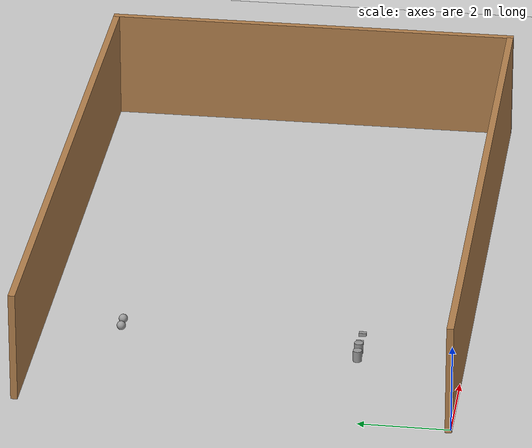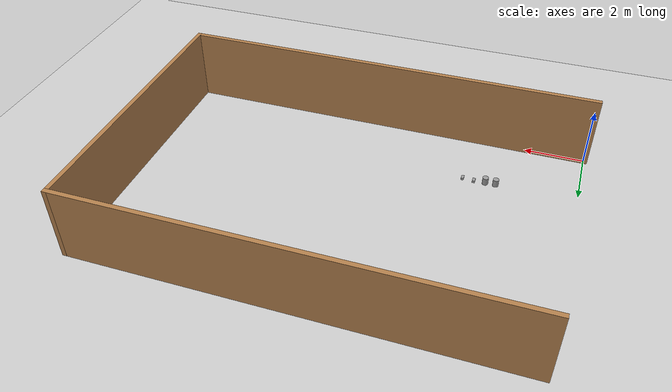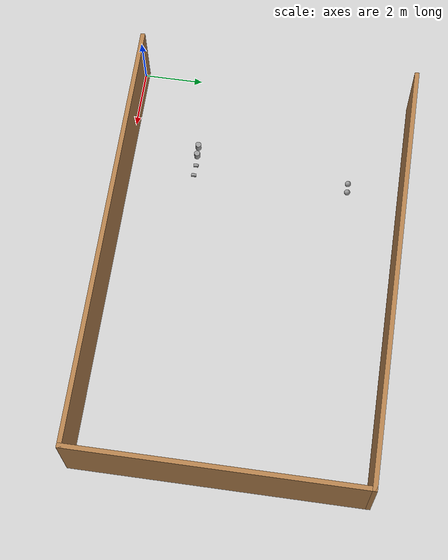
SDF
<sdf version="1.7">
 <world name="default">
  <light name="sun" type="directional">
   <pose>0 0 10 0 -0 0</pose>
   <diffuse>0.8 0.8 0.8 1</diffuse>
   <specular>0.2 0.2 0.2 1</specular>
   <attenuation>
    <range>1000</range>
    <constant>0.9</constant>
    <linear>0.01</linear>
    <quadratic>0.001</quadratic>
   </attenuation>
   <direction>-0.5 0.1 -0.9</direction>
   <spot><inner_angle>0</inner_angle><outer_angle>0</outer_angle><falloff>0</falloff></spot>
  </light>
  <model name="ground_plane">
   <static>1</static>
   <link name="link">
    <collision name="collision">
     <geometry><plane><normal>0 0 1</normal><size>100 100</size></plane></geometry>
     <surface>
      <contact><collide_bitmask>65535</collide_bitmask></contact>
      <friction><ode><mu>100</mu><mu2>50</mu2></ode></friction>
     </surface>
    </collision>
    <visual name="visual">
     <cast_shadows>0</cast_shadows>
     <geometry><plane><normal>0 0 1</normal><size>100 100</size></plane></geometry>
     <material>
      <script><uri>file://media/materials/scripts/gazebo.material</uri><name>Gazebo/Grey</name></script>
     </material>
    </visual>
   </link>
  </model>
  <gravity>0 0 -9.8</gravity>
  <magnetic_field>6e-06 2.3e-05 -4.2e-05</magnetic_field>
  <atmosphere type="adiabatic"/>
  <physics type="ode">
   <max_step_size>0.001</max_step_size>
   <real_time_factor>1</real_time_factor>
   <real_time_update_rate>1000</real_time_update_rate>
  </physics>
  <scene><ambient>0.4 0.4 0.4 1</ambient><background>0.7 0.7 0.7 1</background><shadows>1</shadows></scene>
  <audio><device>default</device></audio>
  <spherical_coordinates>
   <surface_model>EARTH_WGS84</surface_model>
   <latitude_deg>0</latitude_deg>
   <longitude_deg>0</longitude_deg>
   <elevation>0</elevation>
   <heading_deg>0</heading_deg>
  </spherical_coordinates>
  <model name="makeathonworld">
   <pose>7.12101 4.65278 0 0 -0 0</pose>
   <link name="Wall_3">
    <collision name="Wall_3_Collision">
     <geometry><box><size>14.5 0.15 2.5</size></box></geometry>
     <pose>0 0 1.25 0 -0 0</pose>
    </collision>
    <visual name="Wall_3_Visual">
     <pose>0 0 1.25 0 -0 0</pose>
     <geometry><box><size>14.5 0.15 2.5</size></box></geometry>
     <material>
      <script><uri>file://media/materials/scripts/gazebo.material</uri><name>Gazebo/Wood</name></script>
      <ambient>0.435294 0.796078 0.67451 1</ambient>
     </material>
     <meta><layer>0</layer></meta>
    </visual>
    <pose>-0 -4.60503 0 0 -0 0</pose>
   </link>
   <link name="Wall_4">
    <collision name="Wall_4_Collision">
     <geometry><box><size>9.5 0.15 2.5</size></box></geometry>
     <pose>0 0 1.25 0 -0 0</pose>
    </collision>
    <visual name="Wall_4_Visual">
     <pose>0 0 1.25 0 -0 0</pose>
     <geometry><box><size>9.5 0.15 2.5</size></box></geometry>
     <material>
      <script><uri>file://media/materials/scripts/gazebo.material</uri><name>Gazebo/Wood</name></script>
      <ambient>0.435294 0.796078 0.67451 1</ambient>
     </material>
     <meta><layer>0</layer></meta>
    </visual>
    <pose>7.175 0.069967 0 0 -0 1.5708</pose>
   </link>
   <link name="Wall_5">
    <collision name="Wall_5_Collision">
     <geometry><box><size>14.25 0.15 2.5</size></box></geometry>
     <pose>0 0 1.25 0 -0 0</pose>
    </collision>
    <visual name="Wall_5_Visual">
     <pose>0 0 1.25 0 -0 0</pose>
     <geometry><box><size>14.25 0.15 2.5</size></box></geometry>
     <material>
      <script><uri>file://media/materials/scripts/gazebo.material</uri><name>Gazebo/Wood</name></script>
      <ambient>0.435294 0.796078 0.67451 1</ambient>
     </material>
     <meta><layer>0</layer></meta>
    </visual>
    <pose>0.125 4.74497 0 0 -0 3.14159</pose>
   </link>
   <static>1</static>
  </model>
  <model name="makeathonmodel">
   <link name="link_2">
    <inertial>
     <mass>0.00794871</mass>
     <inertia>
      <ixx>3.16614e-05</ixx>
      <ixy>0</ixy>
      <ixz>0</ixz>
      <iyy>3.16614e-05</iyy>
      <iyz>0</iyz>
      <izz>3.16614e-05</izz>
     </inertia>
    </inertial>
    <pose>0.070804 3.51895 0.006924 0 -0 0</pose>
    <visual name="visual">
     <geometry><sphere><radius>0.0997899</radius></sphere></geometry>
     <material>
      <lighting>1</lighting>
      <script><uri>file://media/materials/scripts/gazebo.material</uri><name>Gazebo/Grey</name></script>
      <shader type="pixel"/>
     </material>
    </visual>
    <collision name="collision">
     <geometry><sphere><radius>0.09979</radius></sphere></geometry>
     <surface>
      <friction>
       <ode><mu>1</mu><mu2>1</mu2><fdir1>0 0 0</fdir1><slip1>0</slip1><slip2>0</slip2></ode>
       <torsional>
        <coefficient>1</coefficient>
        <patch_radius>0</patch_radius>
        <surface_radius>0</surface_radius>
        <use_patch_radius>1</use_patch_radius>
        <ode><slip>0</slip></ode>
       </torsional>
      </friction>
      <bounce><restitution_coefficient>0</restitution_coefficient><threshold>1e+06</threshold></bounce>
      <contact>
       <collide_without_contact>0</collide_without_contact>
       <collide_without_contact_bitmask>1</collide_without_contact_bitmask>
       <collide_bitmask>1</collide_bitmask>
       <ode>
        <soft_cfm>0</soft_cfm>
        <soft_erp>0.2</soft_erp>
        <kp>1e+13</kp>
        <kd>1</kd>
        <max_vel>0.01</max_vel>
        <min_depth>0</min_depth>
       </ode>
       <bullet>
        <split_impulse>1</split_impulse>
        <split_impulse_penetration_threshold>-0.01</split_impulse_penetration_threshold>
        <soft_cfm>0</soft_cfm>
        <soft_erp>0.2</soft_erp>
        <kp>1e+13</kp>
        <kd>1</kd>
       </bullet>
      </contact>
     </surface>
    </collision>
   </link>
   <link name="link_2_clone">
    <inertial>
     <mass>0.00794871</mass>
     <inertia>
      <ixx>3.16614e-05</ixx>
      <ixy>0</ixy>
      <ixz>0</ixz>
      <iyy>3.16614e-05</iyy>
      <iyz>0</iyz>
      <izz>3.16614e-05</izz>
     </inertia>
    </inertial>
    <pose>0.391955 3.52515 0.006924 0 -0 0</pose>
    <visual name="visual">
     <geometry><sphere><radius>0.0997899</radius></sphere></geometry>
     <material>
      <lighting>1</lighting>
      <script><uri>file://media/materials/scripts/gazebo.material</uri><name>Gazebo/Grey</name></script>
      <shader type="pixel"/>
     </material>
    </visual>
    <collision name="collision">
     <geometry><sphere><radius>0.09979</radius></sphere></geometry>
     <surface>
      <friction>
       <ode><mu>1</mu><mu2>1</mu2><fdir1>0 0 0</fdir1><slip1>0</slip1><slip2>0</slip2></ode>
       <torsional>
        <coefficient>1</coefficient>
        <patch_radius>0</patch_radius>
        <surface_radius>0</surface_radius>
        <use_patch_radius>1</use_patch_radius>
        <ode><slip>0</slip></ode>
       </torsional>
      </friction>
      <bounce><restitution_coefficient>0</restitution_coefficient><threshold>1e+06</threshold></bounce>
      <contact>
       <collide_without_contact>0</collide_without_contact>
       <collide_without_contact_bitmask>1</collide_without_contact_bitmask>
       <collide_bitmask>1</collide_bitmask>
       <ode>
        <soft_cfm>0</soft_cfm>
        <soft_erp>0.2</soft_erp>
        <kp>1e+13</kp>
        <kd>1</kd>
        <max_vel>0.01</max_vel>
        <min_depth>0</min_depth>
       </ode>
       <bullet>
        <split_impulse>1</split_impulse>
        <split_impulse_penetration_threshold>-0.01</split_impulse_penetration_threshold>
        <soft_cfm>0</soft_cfm>
        <soft_erp>0.2</soft_erp>
        <kp>1e+13</kp>
        <kd>1</kd>
       </bullet>
      </contact>
     </surface>
    </collision>
   </link>
   <link name="link_3">
    <inertial>
     <mass>0.0098839</mass>
     <inertia>
      <ixx>7.713e-05</ixx>
      <ixy>0</ixy>
      <ixz>0</ixz>
      <iyy>7.713e-05</iyy>
      <iyz>0</iyz>
      <izz>4.804e-05</izz>
     </inertia>
    </inertial>
    <pose>-0.653482 -1.77191 0.032401 0 -0 0</pose>
    <visual name="visual">
     <geometry><cylinder><radius>0.0985962</radius><length>0.25393</length></cylinder></geometry>
     <material>
      <lighting>1</lighting>
      <script><uri>file://media/materials/scripts/gazebo.material</uri><name>Gazebo/Grey</name></script>
      <shader type="pixel"><normal_map>__default__</normal_map></shader>
      <ambient>0.3 0.3 0.3 1</ambient>
      <diffuse>0.7 0.7 0.7 1</diffuse>
      <specular>0.01 0.01 0.01 1</specular>
      <emissive>0 0 0 1</emissive>
     </material>
    </visual>
    <visual name="ModelPreview_0::link_3::visual_1">
     <geometry><cylinder><radius>0.0985962</radius><length>0.25393</length></cylinder></geometry>
     <material>
      <lighting>1</lighting>
      <script><uri>file://media/materials/scripts/gazebo.material</uri><name>Gazebo/Grey</name></script>
      <shader type="pixel"><normal_map>__default__</normal_map></shader>
      <ambient>0.3 0.3 0.3 1</ambient>
      <diffuse>0.7 0.7 0.7 1</diffuse>
      <specular>0.01 0.01 0.01 1</specular>
      <emissive>0 0 0 1</emissive>
     </material>
    </visual>
    <visual name="ModelPreview_0::link_3::visual_2">
     <geometry><cylinder><radius>0.0985962</radius><length>0.25393</length></cylinder></geometry>
     <material>
      <lighting>1</lighting>
      <script><uri>file://media/materials/scripts/gazebo.material</uri><name>Gazebo/Grey</name></script>
      <shader type="pixel"><normal_map>__default__</normal_map></shader>
      <ambient>0.3 0.3 0.3 1</ambient>
      <diffuse>0.7 0.7 0.7 1</diffuse>
      <specular>0.01 0.01 0.01 1</specular>
      <emissive>0 0 0 1</emissive>
     </material>
    </visual>
    <visual name="ModelPreview_0::link_3::visual_3">
     <geometry><cylinder><radius>0.0985962</radius><length>0.25393</length></cylinder></geometry>
     <material>
      <lighting>1</lighting>
      <script><uri>file://media/materials/scripts/gazebo.material</uri><name>Gazebo/Grey</name></script>
      <shader type="pixel"><normal_map>__default__</normal_map></shader>
      <ambient>0.3 0.3 0.3 1</ambient>
      <diffuse>0.7 0.7 0.7 1</diffuse>
      <specular>0.01 0.01 0.01 1</specular>
      <emissive>0 0 0 1</emissive>
     </material>
    </visual>
    <visual name="ModelPreview_0::link_3::visual_4">
     <geometry><cylinder><radius>0.0985962</radius><length>0.25393</length></cylinder></geometry>
     <material>
      <lighting>1</lighting>
      <script><uri>file://media/materials/scripts/gazebo.material</uri><name>Gazebo/Grey</name></script>
      <shader type="pixel"><normal_map>__default__</normal_map></shader>
      <ambient>0.3 0.3 0.3 1</ambient>
      <diffuse>0.7 0.7 0.7 1</diffuse>
      <specular>0.01 0.01 0.01 1</specular>
      <emissive>0 0 0 1</emissive>
     </material>
    </visual>
    <collision name="collision">
     <geometry><cylinder><radius>0.098596</radius><length>0.25393</length></cylinder></geometry>
     <surface>
      <friction>
       <ode><mu>1</mu><mu2>1</mu2><fdir1>0 0 0</fdir1><slip1>0</slip1><slip2>0</slip2></ode>
       <torsional>
        <coefficient>1</coefficient>
        <patch_radius>0</patch_radius>
        <surface_radius>0</surface_radius>
        <use_patch_radius>1</use_patch_radius>
        <ode><slip>0</slip></ode>
       </torsional>
      </friction>
      <bounce><restitution_coefficient>0</restitution_coefficient><threshold>1e+06</threshold></bounce>
      <contact>
       <collide_without_contact>0</collide_without_contact>
       <collide_without_contact_bitmask>1</collide_without_contact_bitmask>
       <collide_bitmask>1</collide_bitmask>
       <ode>
        <soft_cfm>0</soft_cfm>
        <soft_erp>0.2</soft_erp>
        <kp>1e+13</kp>
        <kd>1</kd>
        <max_vel>0.01</max_vel>
        <min_depth>0</min_depth>
       </ode>
       <bullet>
        <split_impulse>1</split_impulse>
        <split_impulse_penetration_threshold>-0.01</split_impulse_penetration_threshold>
        <soft_cfm>0</soft_cfm>
        <soft_erp>0.2</soft_erp>
        <kp>1e+13</kp>
        <kd>1</kd>
       </bullet>
      </contact>
     </surface>
    </collision>
   </link>
   <link name="link_3_clone">
    <inertial>
     <mass>0.0098839</mass>
     <inertia>
      <ixx>7.713e-05</ixx>
      <ixy>0</ixy>
      <ixz>0</ixz>
      <iyy>7.713e-05</iyy>
      <iyz>0</iyz>
      <izz>4.804e-05</izz>
     </inertia>
    </inertial>
    <pose>-0.313362 -1.76216 0.032401 0 -0 0</pose>
    <visual name="visual">
     <geometry><cylinder><radius>0.0985962</radius><length>0.25393</length></cylinder></geometry>
     <material>
      <lighting>1</lighting>
      <script><uri>file://media/materials/scripts/gazebo.material</uri><name>Gazebo/Grey</name></script>
      <shader type="pixel"><normal_map>__default__</normal_map></shader>
      <ambient>0.3 0.3 0.3 1</ambient>
      <diffuse>0.7 0.7 0.7 1</diffuse>
      <specular>0.01 0.01 0.01 1</specular>
      <emissive>0 0 0 1</emissive>
     </material>
    </visual>
    <visual name="ModelPreview_0::link_3_clone::visual_1">
     <geometry><cylinder><radius>0.0985962</radius><length>0.25393</length></cylinder></geometry>
     <material>
      <lighting>1</lighting>
      <script><uri>file://media/materials/scripts/gazebo.material</uri><name>Gazebo/Grey</name></script>
      <shader type="pixel"><normal_map>__default__</normal_map></shader>
      <ambient>0.3 0.3 0.3 1</ambient>
      <diffuse>0.7 0.7 0.7 1</diffuse>
      <specular>0.01 0.01 0.01 1</specular>
      <emissive>0 0 0 1</emissive>
     </material>
    </visual>
    <visual name="ModelPreview_0::link_3_clone::visual_2">
     <geometry><cylinder><radius>0.0985962</radius><length>0.25393</length></cylinder></geometry>
     <material>
      <lighting>1</lighting>
      <script><uri>file://media/materials/scripts/gazebo.material</uri><name>Gazebo/Grey</name></script>
      <shader type="pixel"><normal_map>__default__</normal_map></shader>
      <ambient>0.3 0.3 0.3 1</ambient>
      <diffuse>0.7 0.7 0.7 1</diffuse>
      <specular>0.01 0.01 0.01 1</specular>
      <emissive>0 0 0 1</emissive>
     </material>
    </visual>
    <visual name="ModelPreview_0::link_3_clone::visual_3">
     <geometry><cylinder><radius>0.0985962</radius><length>0.25393</length></cylinder></geometry>
     <material>
      <lighting>1</lighting>
      <script><uri>file://media/materials/scripts/gazebo.material</uri><name>Gazebo/Grey</name></script>
      <shader type="pixel"><normal_map>__default__</normal_map></shader>
      <ambient>0.3 0.3 0.3 1</ambient>
      <diffuse>0.7 0.7 0.7 1</diffuse>
      <specular>0.01 0.01 0.01 1</specular>
      <emissive>0 0 0 1</emissive>
     </material>
    </visual>
    <visual name="ModelPreview_0::link_3_clone::visual_4">
     <geometry><cylinder><radius>0.0985962</radius><length>0.25393</length></cylinder></geometry>
     <material>
      <lighting>1</lighting>
      <script><uri>file://media/materials/scripts/gazebo.material</uri><name>Gazebo/Grey</name></script>
      <shader type="pixel"><normal_map>__default__</normal_map></shader>
     </material>
    </visual>
    <collision name="collision">
     <geometry><cylinder><radius>0.098596</radius><length>0.25393</length></cylinder></geometry>
     <surface>
      <friction>
       <ode><mu>1</mu><mu2>1</mu2><fdir1>0 0 0</fdir1><slip1>0</slip1><slip2>0</slip2></ode>
       <torsional>
        <coefficient>1</coefficient>
        <patch_radius>0</patch_radius>
        <surface_radius>0</surface_radius>
        <use_patch_radius>1</use_patch_radius>
        <ode><slip>0</slip></ode>
       </torsional>
      </friction>
      <bounce><restitution_coefficient>0</restitution_coefficient><threshold>1e+06</threshold></bounce>
      <contact>
       <collide_without_contact>0</collide_without_contact>
       <collide_without_contact_bitmask>1</collide_without_contact_bitmask>
       <collide_bitmask>1</collide_bitmask>
       <ode>
        <soft_cfm>0</soft_cfm>
        <soft_erp>0.2</soft_erp>
        <kp>1e+13</kp>
        <kd>1</kd>
        <max_vel>0.01</max_vel>
        <min_depth>0</min_depth>
       </ode>
       <bullet>
        <split_impulse>1</split_impulse>
        <split_impulse_penetration_threshold>-0.01</split_impulse_penetration_threshold>
        <soft_cfm>0</soft_cfm>
        <soft_erp>0.2</soft_erp>
        <kp>1e+13</kp>
        <kd>1</kd>
       </bullet>
      </contact>
     </surface>
    </collision>
   </link>
   <link name="link_4">
    <inertial>
     <mass>0.00121889</mass>
     <inertia>
      <ixx>3.35e-06</ixx>
      <ixy>0</ixy>
      <ixz>0</ixz>
      <iyy>1.53e-06</iyy>
      <iyz>0</iyz>
      <izz>3.56e-06</izz>
     </inertia>
    </inertial>
    <pose>0.061629 -1.74459 -0.042075 0 -0 0</pose>
    <visual name="visual">
     <geometry><box><size>0.092412 0.162677 0.080938</size></box></geometry>
     <material>
      <lighting>1</lighting>
      <script><uri>file://media/materials/scripts/gazebo.material</uri><name>Gazebo/Grey</name></script>
      <shader type="pixel"><normal_map>__default__</normal_map></shader>
     </material>
    </visual>
    <visual name="ModelPreview_0::link_4::visual_1">
     <geometry><box><size>0.092412 0.162677 0.080938</size></box></geometry>
     <material>
      <lighting>1</lighting>
      <script><uri>file://media/materials/scripts/gazebo.material</uri><name>Gazebo/Grey</name></script>
      <shader type="pixel"><normal_map>__default__</normal_map></shader>
     </material>
    </visual>
    <visual name="ModelPreview_0::link_4::visual_2">
     <geometry><box><size>0.092412 0.162677 0.080938</size></box></geometry>
     <material>
      <lighting>1</lighting>
      <script><uri>file://media/materials/scripts/gazebo.material</uri><name>Gazebo/Grey</name></script>
      <shader type="pixel"><normal_map>__default__</normal_map></shader>
     </material>
    </visual>
    <visual name="ModelPreview_0::link_4::visual_3">
     <geometry><box><size>0.092412 0.162677 0.080938</size></box></geometry>
     <material>
      <lighting>1</lighting>
      <script><uri>file://media/materials/scripts/gazebo.material</uri><name>Gazebo/Grey</name></script>
      <shader type="pixel"><normal_map>__default__</normal_map></shader>
     </material>
    </visual>
    <visual name="ModelPreview_0::link_4::visual_4">
     <geometry><box><size>0.092412 0.162677 0.080938</size></box></geometry>
     <material>
      <lighting>1</lighting>
      <script><uri>file://media/materials/scripts/gazebo.material</uri><name>Gazebo/Grey</name></script>
      <shader type="pixel"><normal_map>__default__</normal_map></shader>
     </material>
    </visual>
    <visual name="ModelPreview_0::link_4::visual_5">
     <geometry><box><size>0.092412 0.162677 0.080938</size></box></geometry>
     <material>
      <lighting>1</lighting>
      <script><uri>file://media/materials/scripts/gazebo.material</uri><name>Gazebo/Grey</name></script>
      <shader type="pixel"><normal_map>__default__</normal_map></shader>
     </material>
    </visual>
    <visual name="ModelPreview_0::link_4::visual_6">
     <geometry><box><size>0.092412 0.162677 0.080938</size></box></geometry>
     <material>
      <lighting>1</lighting>
      <script><uri>file://media/materials/scripts/gazebo.material</uri><name>Gazebo/Grey</name></script>
      <shader type="pixel"><normal_map>__default__</normal_map></shader>
     </material>
    </visual>
    <collision name="collision">
     <geometry><box><size>0.092412 0.162677 0.080938</size></box></geometry>
     <surface>
      <friction>
       <ode><mu>1</mu><mu2>1</mu2><fdir1>0 0 0</fdir1><slip1>0</slip1><slip2>0</slip2></ode>
       <torsional>
        <coefficient>1</coefficient>
        <patch_radius>0</patch_radius>
        <surface_radius>0</surface_radius>
        <use_patch_radius>1</use_patch_radius>
        <ode><slip>0</slip></ode>
       </torsional>
      </friction>
      <bounce><restitution_coefficient>0</restitution_coefficient><threshold>1e+06</threshold></bounce>
      <contact>
       <collide_without_contact>0</collide_without_contact>
       <collide_without_contact_bitmask>1</collide_without_contact_bitmask>
       <collide_bitmask>1</collide_bitmask>
       <ode>
        <soft_cfm>0</soft_cfm>
        <soft_erp>0.2</soft_erp>
        <kp>1e+13</kp>
        <kd>1</kd>
        <max_vel>0.01</max_vel>
        <min_depth>0</min_depth>
       </ode>
       <bullet>
        <split_impulse>1</split_impulse>
        <split_impulse_penetration_threshold>-0.01</split_impulse_penetration_threshold>
        <soft_cfm>0</soft_cfm>
        <soft_erp>0.2</soft_erp>
        <kp>1e+13</kp>
        <kd>1</kd>
       </bullet>
      </contact>
     </surface>
    </collision>
   </link>
   <link name="link_4_clone">
    <inertial>
     <mass>0.00121889</mass>
     <inertia>
      <ixx>3.35e-06</ixx>
      <ixy>0</ixy>
      <ixz>0</ixz>
      <iyy>1.53e-06</iyy>
      <iyz>0</iyz>
      <izz>3.56e-06</izz>
     </inertia>
    </inertial>
    <pose>0.442451 -1.76543 -0.036576 0 -0 0</pose>
    <visual name="visual_4">
     <geometry><box><size>0.092412 0.162677 0.080938</size></box></geometry>
     <material>
      <lighting>1</lighting>
      <script><uri>file://media/materials/scripts/gazebo.material</uri><name>Gazebo/Grey</name></script>
      <shader type="pixel"><normal_map>__default__</normal_map></shader>
     </material>
    </visual>
    <visual name="visual_3">
     <geometry><box><size>0.092412 0.162677 0.080938</size></box></geometry>
     <material>
      <lighting>1</lighting>
      <script><uri>file://media/materials/scripts/gazebo.material</uri><name>Gazebo/Grey</name></script>
      <shader type="pixel"><normal_map>__default__</normal_map></shader>
     </material>
    </visual>
    <visual name="visual_1">
     <geometry><box><size>0.092412 0.162677 0.080938</size></box></geometry>
     <material>
      <lighting>1</lighting>
      <script><uri>file://media/materials/scripts/gazebo.material</uri><name>Gazebo/Grey</name></script>
      <shader type="pixel"><normal_map>__default__</normal_map></shader>
     </material>
    </visual>
    <visual name="visual">
     <geometry><box><size>0.092412 0.162677 0.080938</size></box></geometry>
     <material>
      <lighting>1</lighting>
      <script><uri>file://media/materials/scripts/gazebo.material</uri><name>Gazebo/Grey</name></script>
      <shader type="pixel"><normal_map>__default__</normal_map></shader>
     </material>
    </visual>
    <visual name="visual_5">
     <geometry><box><size>0.092412 0.162677 0.080938</size></box></geometry>
     <material>
      <lighting>1</lighting>
      <script><uri>file://media/materials/scripts/gazebo.material</uri><name>Gazebo/Grey</name></script>
      <shader type="pixel"><normal_map>__default__</normal_map></shader>
     </material>
    </visual>
    <visual name="visual_6">
     <geometry><box><size>0.092412 0.162677 0.080938</size></box></geometry>
     <material>
      <lighting>1</lighting>
      <script><uri>file://media/materials/scripts/gazebo.material</uri><name>Gazebo/Grey</name></script>
      <shader type="pixel"><normal_map>__default__</normal_map></shader>
     </material>
    </visual>
    <visual name="visual_2">
     <geometry><box><size>0.092412 0.162677 0.080938</size></box></geometry>
     <material>
      <lighting>1</lighting>
      <script><uri>file://media/materials/scripts/gazebo.material</uri><name>Gazebo/Grey</name></script>
      <shader type="pixel"><normal_map>__default__</normal_map></shader>
     </material>
    </visual>
    <collision name="collision">
     <geometry><box><size>0.092412 0.162677 0.080938</size></box></geometry>
     <surface>
      <friction>
       <ode><mu>1</mu><mu2>1</mu2><fdir1>0 0 0</fdir1><slip1>0</slip1><slip2>0</slip2></ode>
       <torsional>
        <coefficient>1</coefficient>
        <patch_radius>0</patch_radius>
        <surface_radius>0</surface_radius>
        <use_patch_radius>1</use_patch_radius>
        <ode><slip>0</slip></ode>
       </torsional>
      </friction>
      <bounce><restitution_coefficient>0</restitution_coefficient><threshold>1e+06</threshold></bounce>
      <contact>
       <collide_without_contact>0</collide_without_contact>
       <collide_without_contact_bitmask>1</collide_without_contact_bitmask>
       <collide_bitmask>1</collide_bitmask>
       <ode>
        <soft_cfm>0</soft_cfm>
        <soft_erp>0.2</soft_erp>
        <kp>1e+13</kp>
        <kd>1</kd>
        <max_vel>0.01</max_vel>
        <min_depth>0</min_depth>
       </ode>
       <bullet>
        <split_impulse>1</split_impulse>
        <split_impulse_penetration_threshold>-0.01</split_impulse_penetration_threshold>
        <soft_cfm>0</soft_cfm>
        <soft_erp>0.2</soft_erp>
        <kp>1e+13</kp>
        <kd>1</kd>
       </bullet>
      </contact>
     </surface>
    </collision>
   </link>
   <static>0</static>
   <pose>3.31013 4.07243 0.150583 0 -0 0</pose>
  </model>
 </world>
</sdf>
